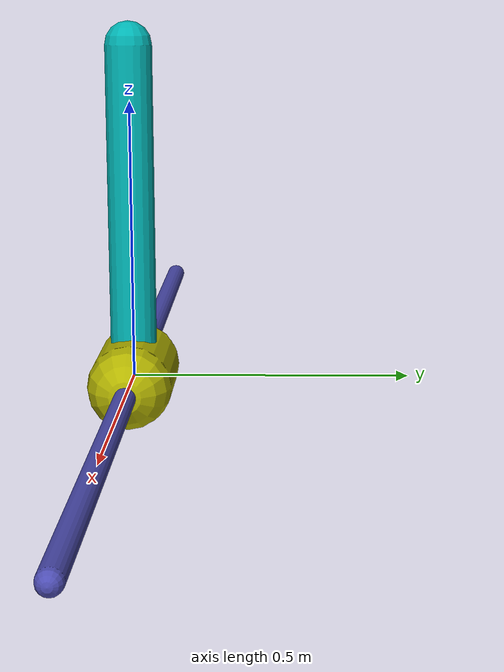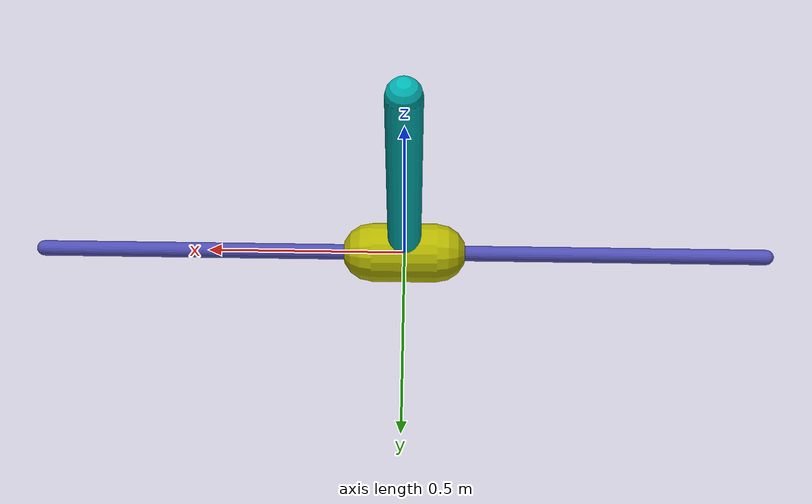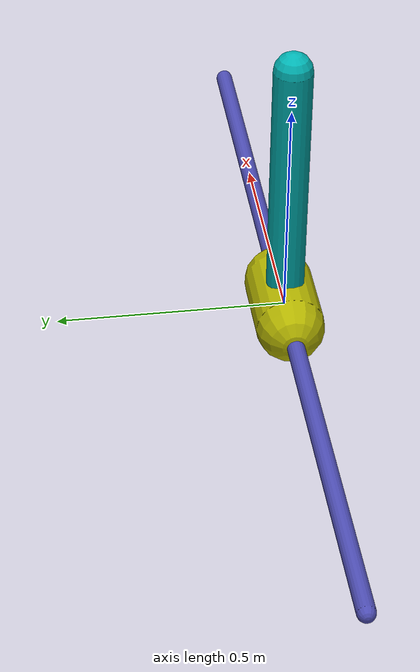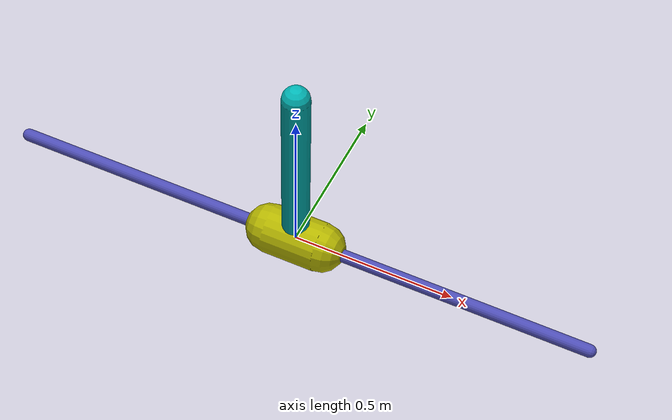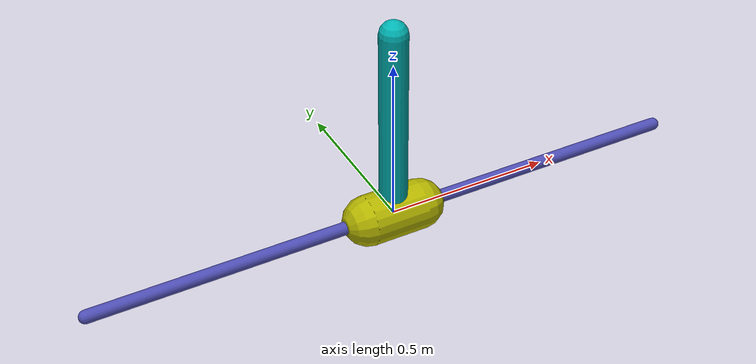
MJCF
<?xml version="1.0" encoding="utf-8"?>
<mujoco model="inverted pendulum">
	<compiler inertiafromgeom="true"></compiler>
	<default>
		<joint armature="0" damping="1.284962193238656" limited="true"></joint>
		<geom contype="0" friction="1.1105607902071029 0.12552421436363437 0.1289952948476419" rgba="0.7 0.7 0 1"></geom>
		<tendon></tendon>
		<motor ctrlrange="-3 3"></motor>
	</default>
	<option gravity="0 0 -9.81" integrator="RK4" timestep="0.02"></option>
	<size nstack="3000"></size>
	<worldbody>
		<geom name="rail" pos="0 0 0" quat="0.707 0 0.707 0" rgba="0.3 0.3 0.7 1" size="0.01941376601105553 0.9220717845481241" type="capsule"></geom>
		<body name="cart" pos="0 0 0">
			<joint axis="1 0 0" limited="true" name="slider" pos="0 0 0" range="-1 1" type="slide"></joint>
			<geom name="cart" pos="0 0 0" quat="0.707 0 0.707 0" size="0.07506836428863317 0.08299153783912287" type="capsule"></geom>
			<body name="pole" pos="0 0 0">
				<joint axis="0 1 0" name="hinge" pos="0 0 0" limited="false" range="-90 90" type="hinge"></joint>
				<geom fromto="0 0 0 0.001 0 0.6" name="cpole" rgba="0 0.7 0.7 1" size="0.04186451031348067 0.316571170170305" type="capsule"></geom>
			</body>
		</body>
	</worldbody>
	<actuator>
		<motor gear="100" joint="slider" name="slide"></motor>
	</actuator>
</mujoco>
